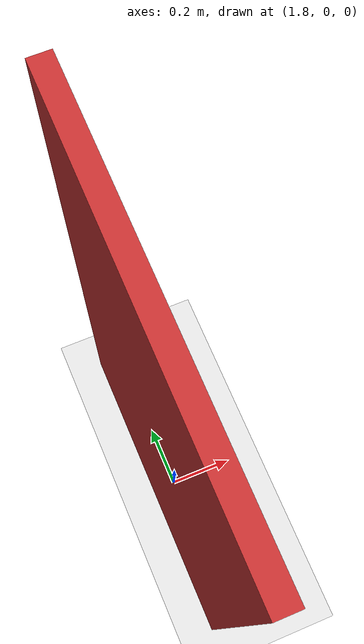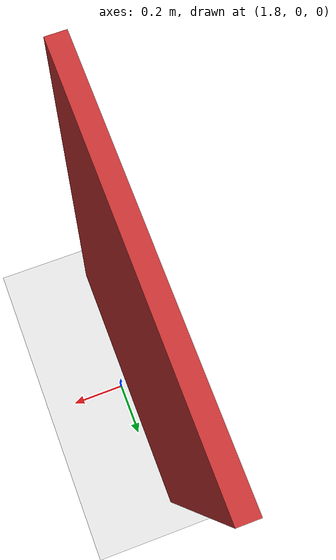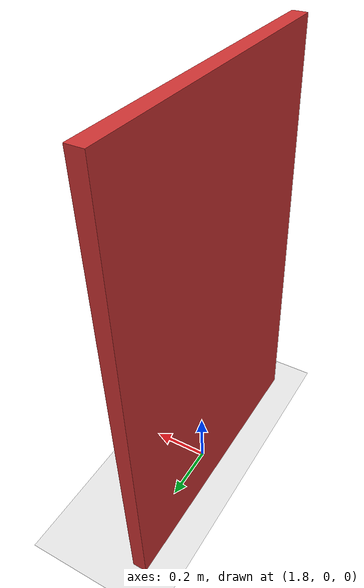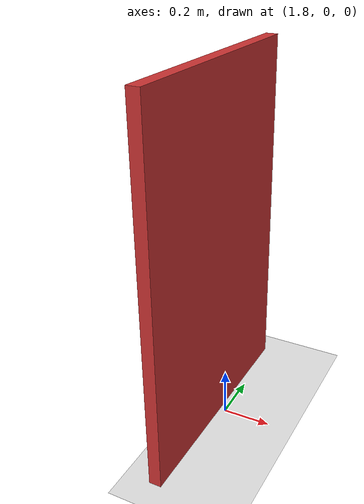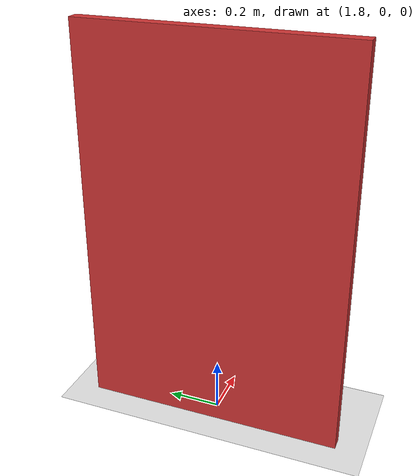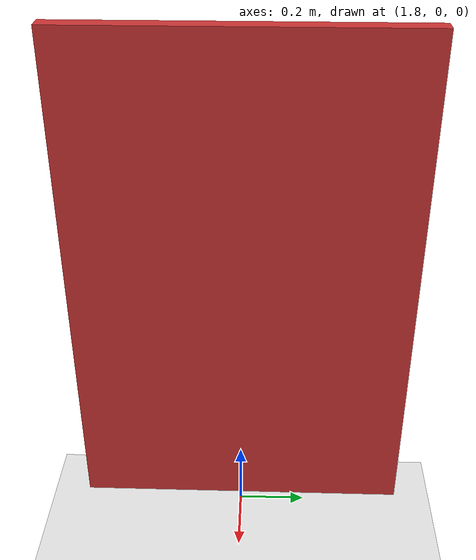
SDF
<?xml version="1.0" ?>
<sdf version="1.8">
  <world name="arm_world">
    <gravity>0 0 -9.81</gravity>

    <plugin
      filename="ignition-gazebo-physics-system"
      name="ignition::gazebo::systems::Physics"/>
    <plugin
      filename="ignition-gazebo-user-commands-system"
      name="ignition::gazebo::systems::UserCommands"/>
    <plugin
      filename="ignition-gazebo-scene-broadcaster-system"
      name="ignition::gazebo::systems::SceneBroadcaster"/>
    <plugin
      filename="ignition-gazebo-contact-system"
      name="ignition::gazebo::systems::Contact"/>

    <scene>
      <ambient>0.4 0.4 0.4 1</ambient>
      <background>0.7 0.7 0.7 1</background>
      <shadows>true</shadows>
    </scene>

    <light name="sun" type="directional">
      <cast_shadows>true</cast_shadows>
      <pose>0 0 10 0 0 0</pose>
      <diffuse>0.8 0.8 0.8 1</diffuse>
      <specular>0.2 0.2 0.2 1</specular>
      <attenuation>
        <range>1000</range>
        <constant>0.9</constant>
        <linear>0.01</linear>
        <quadratic>0.001</quadratic>
      </attenuation>
      <direction>-0.4 0.2 -0.9</direction>
    </light>

    <model name="ground_plane">
      <static>true</static>
      <link name="link">
        <collision name="collision">
          <geometry>
            <plane>
              <normal>0 0 1</normal>
              <size>25 25</size>
            </plane>
          </geometry>
        </collision>
        <visual name="visual">
          <geometry>
            <plane>
              <normal>0 0 1</normal>
              <size>25 25</size>
            </plane>
          </geometry>
          <material>
            <ambient>0.9 0.9 0.9 1</ambient>
            <diffuse>0.9 0.9 0.9 1</diffuse>
          </material>
        </visual>
      </link>
    </model>

    <model name="wall">
      <static>true</static>
      <pose>1.75 0 0.75 0 0 0</pose>
      <link name="link">
        <collision name="collision">
          <geometry>
            <box>
              <size>0.05 1.0 1.5</size>
            </box>
          </geometry>
        </collision>
        <visual name="visual">
          <geometry>
            <box>
              <size>0.05 1.0 1.5</size>
            </box>
          </geometry>
          <material>
            <ambient>0.8 0.2 0.2 1</ambient>
            <diffuse>0.8 0.2 0.2 1</diffuse>
          </material>
        </visual>
      </link>
    </model>

  </world>
</sdf>
